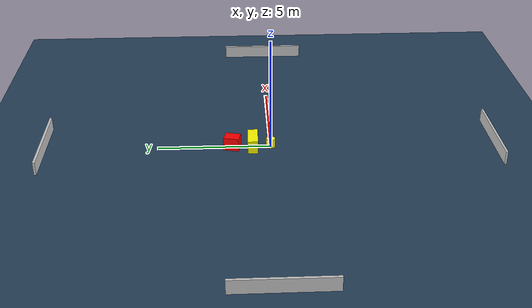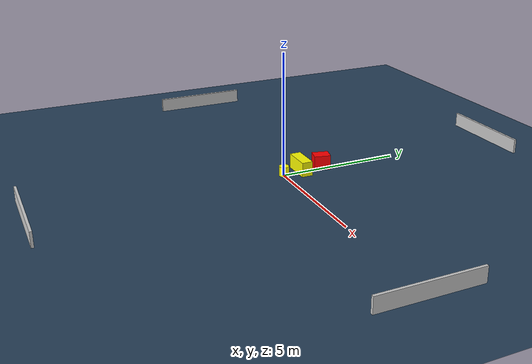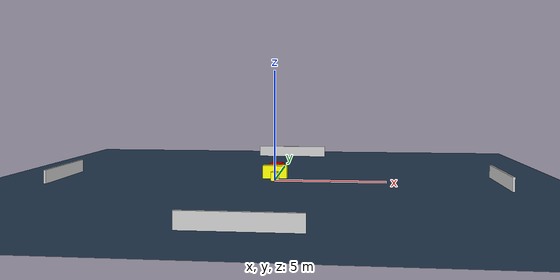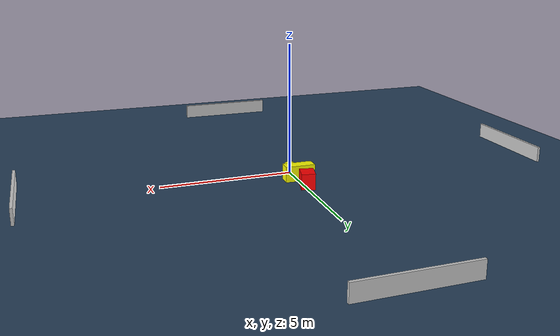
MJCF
<?xml version="1.0" ?>
<mujoco model="generated_environment">
  <option timestep="0.01" integrator="RK4" cone="elliptic"/>
  <default>
    <geom density="1"/>
  </default>
  <asset>
    <texture builtin="gradient" height="3072" name="skybox" rgb1="0.3 0.5 0.7" rgb2="0 0 0" type="skybox" width="512"/>
    <texture builtin="checker" height="300" name="groundplane" rgb1="0.2 0.3 0.4" rgb2="0.1 0.2 0.3" type="2d" width="300"/>
    <material name="groundplane" reflectance="0.2" texrepeat="5 5" texture="groundplane"/>
  </asset>
  <worldbody>
    <light dir="0 0 -1" directional="true" pos="0 0 1.5"/>
    <geom condim="3" friction="0.5 0.005 0.001" material="groundplane" name="floor" pos="0 0 0" size="0 0 0.05" type="plane"/>
    <body name="walls">
      <geom name="wall_1" condim="4" pos="-10.0 0.0 0.3" rgba="0.800000011920929 0.800000011920929 0.800000011920929 1.0" size="0.05 2.0 0.3" type="box"/>
      <geom name="wall_2" condim="4" pos="10.0 0.0 0.3" rgba="0.800000011920929 0.800000011920929 0.800000011920929 1.0" size="0.05 2.0 0.3" type="box"/>
      <geom name="wall_3" condim="4" pos="0.0 -10.0 0.3" rgba="0.800000011920929 0.800000011920929 0.800000011920929 1.0" size="2.0 0.05 0.3" type="box"/>
      <geom name="wall_4" condim="4" pos="0.0 10.0 0.3" rgba="0.800000011920929 0.800000011920929 0.800000011920929 1.0" size="2.0 0.05 0.3" type="box"/>
    </body>
    <body name="robot">
      <joint name="joint_x" type="slide" pos="0 0 0" axis="1 0 0"/>
      <joint name="joint_y" type="slide" pos="0 0 0" axis="0 1 0"/>
      <geom name="robot" type="cylinder" pos="0.0 0.0 0.2" size="0.2 0.2 0.0" mass="5.0" friction="1.0 0.005 0.0001" condim="4" rgba="1.0 1.0 0.0 1.0"/>
    </body>
    <body name="obstacle_1_movable">
      <geom name="obstacle_1_movable" condim="4" pos="-0.06702357749813975 0.801407530123867 0.3" euler="0 0 179.71264723039582" friction="0.0 0.005 0.001" rgba="1.0 1.0 0.0 1.0" size="0.5663828704568308 0.22589572034248512 0.3" type="box" mass="0.1"/>
      <joint type="free"/>
    </body>
    <body name="obstacle_2_static">
      <geom name="obstacle_2_static" condim="4" pos="-0.0759953339638848 1.7098427296209981 0.3" euler="0 0 76.64578814037787" friction="0.0 0.005 0.001" rgba="1.0 0.0 0.0 1.0" size="0.3386150266789238 0.25910909931950127 0.3" type="box"/>
    </body>
  </worldbody>
  <actuator>
    <motor name="actuator_x" joint="joint_x" gear="1" ctrlrange="-1 1"/>
    <motor name="actuator_y" joint="joint_y" gear="1" ctrlrange="-1 1"/>
  </actuator>
</mujoco>
